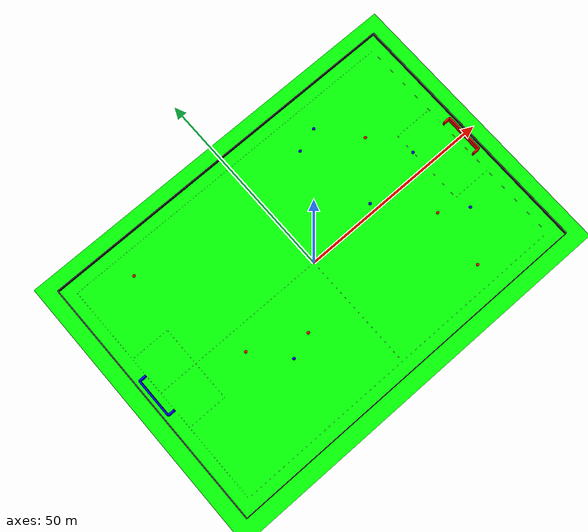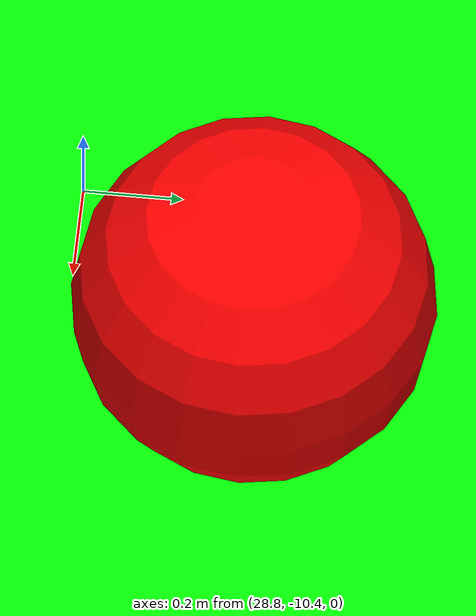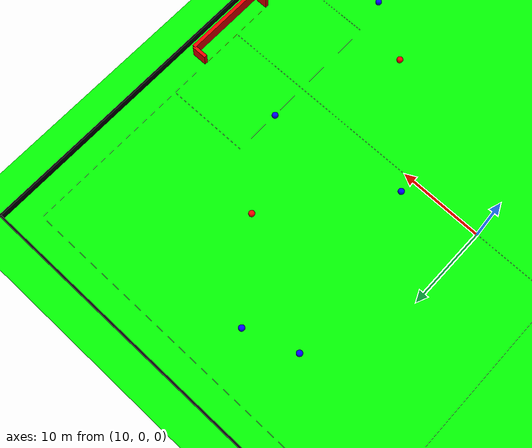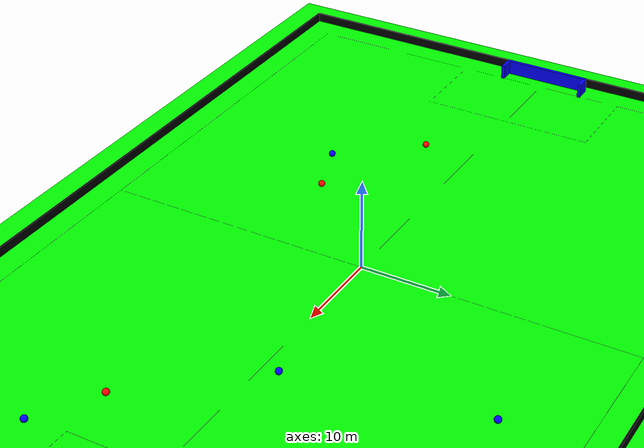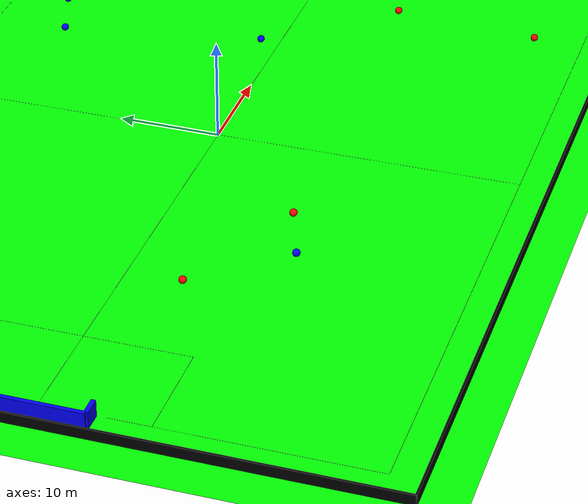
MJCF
<mujoco>

				<default>
					<geom contype="1" conaffinity="1" condim="3" friction=".5 .02 .02" />
				</default>

				<worldbody>

					<body name="arena">

						<geom name="field" type="plane" size="52 37 0.1" pos="0 0 0" rgba="0 1 0 1" />

						<geom name="boundary_S" type="box" size="48 0.1 1" pos="0 33 0" rgba="0 0 0 1" mass="1000" />
						<geom name="boundary_N" type="box" size="48 0.1 1" pos="0 -33 0" rgba="0 0 0 1" mass="1000" />
						<geom name="boundary_W" type="box" size="33 0.1 1" pos="48 0 0" rgba="0 0 0 1" euler="0 0 90" mass="1000" />
						<geom name="boundary_E" type="box" size="33 0.1 1" pos="-48 0 0" rgba="0 0 0 1" euler="0 0 90" mass="1000" />

						<geom name="goalE_W" type="box" size="5 0.2 1.6" pos="46.8 0 0" rgba="1 0 0 1" euler="0 0 90" />
						<geom name="goalE_S" type="box" size="0.9 0.2 1.6" pos="45.9 5 0" rgba="1 0 0 1" />
						<geom name="goalE_N" type="box" size="0.9 0.2 1.6" pos="45.9 -5 0" rgba="1 0 0 1" />

						<geom name="goalW_E" type="box" size="5 0.2 1.6" pos="-46.8 0 0" rgba="0 0 1 1" euler="0 0 90" />
						<geom name="goalW_S" type="box" size="0.9 0.2 1.6" pos="-45.9 5 0" rgba="0 0 1 1" />
						<geom name="goalW_N" type="box" size="0.9 0.2 1.6" pos="-45.9 -5 0" rgba="0 0 1 1" />

						<geom name="line_S" type="box" size="0.001 45 0.01" pos="0 30 0" rgba="255 255 255 1" euler="90 0 90" />
						<geom name="line_N" type="box" size="0.001 45 0.01" pos="0 -30 0" rgba="255 255 255 1" euler="90 0 90" />
						<geom name="line_goalE" type="box" size="0.001 5 0.01" pos="-45 0 0" rgba="255 255 0 1" euler="0 90 0" />
						<geom name="line_goalE_N" type="box" size="0.001 12 0.01" pos="-45 -18 0" rgba="255 255 255 1" euler="0 90 0" />
						<geom name="line_goalE_S" type="box" size="0.001 12 0.01" pos="-45 18 0" rgba="255 255 255 1" euler="0 90 0" />
						<geom name="line_goalW" type="box" size="0.001 5 0.01" pos="45 0 0" rgba="255 255 0 1" euler="0 90 0" />
						<geom name="line_goalW_N" type="box" size="0.001 12 0.01" pos="45 -18 0" rgba="255 255 255 1" euler="0 90 0" />
						<geom name="line_goalW_S" type="box" size="0.001 12 0.01" pos="45 18 0" rgba="255 255 255 1" euler="0 90 0" />

						<geom name="line_halfway" type="box" size="0.001 30 0.01" pos="0 0 0" rgba="255 255 255 1" euler="0 90 0" />
						<geom name="line_goal2goal" type="box" size="0.001 45 0.01" pos="0 0 0" rgba="255 255 255 1" euler="90 0 90" />

						<geom name="line_defenceW_S" type="box" size="0.001 5 0.01" pos="40 10 0" rgba="255 255 255 1" euler="90 0 90" />
						<geom name="line_defenceW_N" type="box" size="0.001 5 0.01" pos="40 -10 0" rgba="255 255 255 1" euler="90 0 90" />
						<geom name="line_defenceW_E" type="box" size="0.001 10 0.01" pos="35 0 0" rgba="255 255 255 1" euler="0 90 0" />

						<geom name="line_defenceE_S" type="box" size="0.001 5 0.01" pos="-40 10 0" rgba="255 255 255 1" euler="90 0 90" />
						<geom name="line_defenceE_N" type="box" size="0.001 5 0.01" pos="-40 -10 0" rgba="255 255 255 1" euler="90 0 90" />
						<geom name="line_defenceE_W" type="box" size="0.001 10 0.01" pos="-35 0 0" rgba="255 255 255 1" euler="0 90 0" />

					</body>

					<body name="ball" pos="0 0 0.215">
						<geom name="ball" type="sphere" size="0.215" rgba="1 0.647 0 1" mass="2.77" friction="1" />
						<joint name="ball" type="free" />
					</body>

			<body name="A_0" pos="15.206936567944432 22.168370823449692 0.365">
				<geom name="A_0" type="sphere" size="0.365" rgba="0 0 1 1" mass="200" density="100" />
				<joint name="A_0" type="free" />
			</body>

			<body name="A_1" pos="-17.821643606043693 -13.644750097495084 0.365">
				<geom name="A_1" type="sphere" size="0.365" rgba="0 0 1 1" mass="200" density="100" />
				<joint name="A_1" type="free" />
			</body>

			<body name="A_2" pos="21.253250886293557 24.274502050962667 0.365">
				<geom name="A_2" type="sphere" size="0.365" rgba="0 0 1 1" mass="200" density="100" />
				<joint name="A_2" type="free" />
			</body>

			<body name="A_3" pos="35.83713960367888 -13.998569727353043 0.365">
				<geom name="A_3" type="sphere" size="0.365" rgba="0 0 1 1" mass="200" density="100" />
				<joint name="A_3" type="free" />
			</body>

			<body name="A_4" pos="18.957011582216452 1.8963775670543406 0.365">
				<geom name="A_4" type="sphere" size="0.365" rgba="0 0 1 1" mass="200" density="100" />
				<joint name="A_4" type="free" />
			</body>

			<body name="A_5" pos="34.86418874848914 4.565046795964804 0.365">
				<geom name="A_5" type="sphere" size="0.365" rgba="0 0 1 1" mass="200" density="100" />
				<joint name="A_5" type="free" />
			</body>

			<body name="B_0" pos="-32.79725415357171 24.54034479173118 0.365">
				<geom name="B_0" type="sphere" size="0.365" rgba="1 0 0 1" mass="200" density="100" />
				<joint name="B_0" type="free" />
			</body>

			<body name="B_1" pos="27.758188947778322 -24.999447964633486 0.365">
				<geom name="B_1" type="sphere" size="0.365" rgba="1 0 0 1" mass="200" density="100" />
				<joint name="B_1" type="free" />
			</body>

			<body name="B_2" pos="29.25438261008138 -10.010606909554316 0.365">
				<geom name="B_2" type="sphere" size="0.365" rgba="1 0 0 1" mass="200" density="100" />
				<joint name="B_2" type="free" />
			</body>

			<body name="B_3" pos="-24.918844892237875 -5.3944295259035115 0.365">
				<geom name="B_3" type="sphere" size="0.365" rgba="1 0 0 1" mass="200" density="100" />
				<joint name="B_3" type="free" />
			</body>

			<body name="B_4" pos="28.924878925688077 14.627271216035517 0.365">
				<geom name="B_4" type="sphere" size="0.365" rgba="1 0 0 1" mass="200" density="100" />
				<joint name="B_4" type="free" />
			</body>

			<body name="B_5" pos="-11.588072195687324 -11.387422569974802 0.365">
				<geom name="B_5" type="sphere" size="0.365" rgba="1 0 0 1" mass="200" density="100" />
				<joint name="B_5" type="free" />
			</body>

				</worldbody>
			</mujoco>
